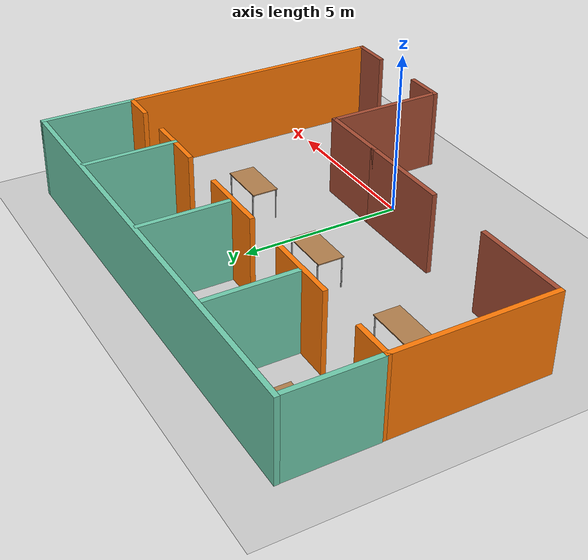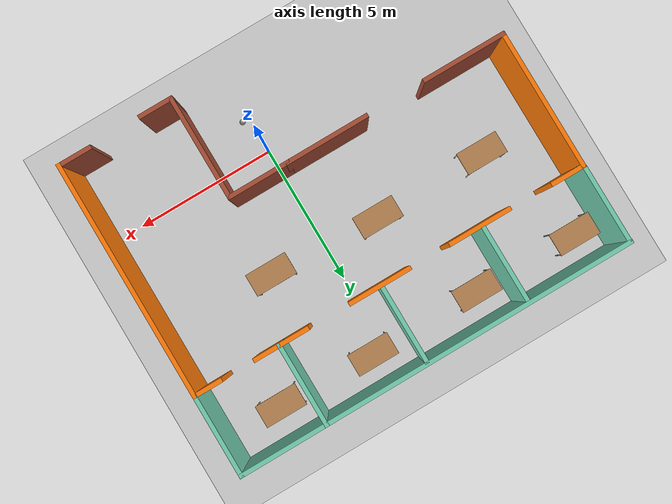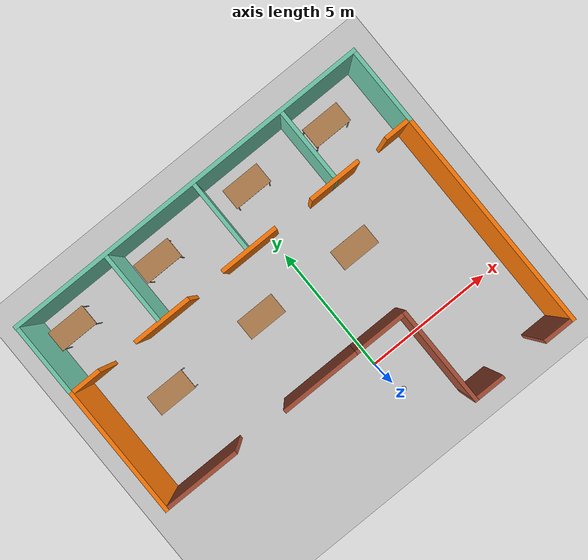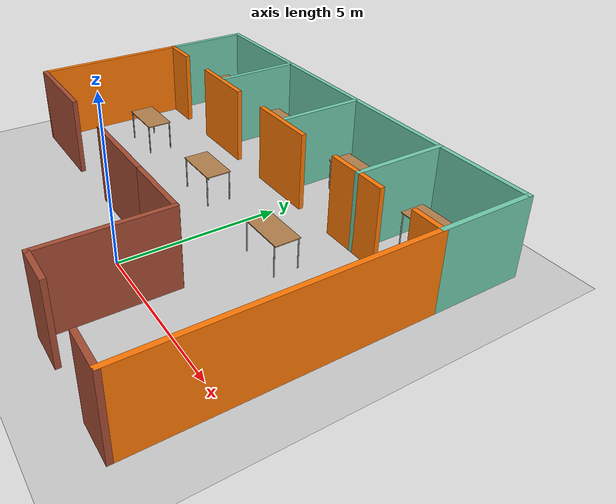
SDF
<sdf version="1.7">
 <world name="default">
  <plugin name="welcome" filename="libwelcome.so"/>
  <light name="sun" type="directional">
   <pose>0 0 10 0 -0 0</pose>
   <diffuse>0.8 0.8 0.8 1</diffuse>
   <specular>0.2 0.2 0.2 1</specular>
   <attenuation>
    <range>1000</range>
    <constant>0.9</constant>
    <linear>0.01</linear>
    <quadratic>0.001</quadratic>
   </attenuation>
   <direction>-0.5 0.1 -0.9</direction>
   <spot><inner_angle>0</inner_angle><outer_angle>0</outer_angle><falloff>0</falloff></spot>
  </light>
  <model name="ground_plane">
   <static>1</static>
   <link name="link">
    <collision name="collision">
     <geometry><plane><normal>0 0 1</normal><size>100 100</size></plane></geometry>
     <surface>
      <contact><collide_bitmask>65535</collide_bitmask></contact>
      <friction><ode><mu>100</mu><mu2>50</mu2></ode></friction>
     </surface>
    </collision>
    <visual name="visual">
     <cast_shadows>0</cast_shadows>
     <geometry><plane><normal>0 0 1</normal><size>100 100</size></plane></geometry>
     <material>
      <script><uri>file://media/materials/scripts/gazebo.material</uri><name>Gazebo/Grey</name></script>
     </material>
    </visual>
   </link>
  </model>
  <gravity>0 0 -9.8</gravity>
  <magnetic_field>6e-06 2.3e-05 -4.2e-05</magnetic_field>
  <atmosphere type="adiabatic"/>
  <physics type="ode">
   <max_step_size>0.001</max_step_size>
   <real_time_factor>1</real_time_factor>
   <real_time_update_rate>1000</real_time_update_rate>
  </physics>
  <scene><ambient>0.4 0.4 0.4 1</ambient><background>0.7 0.7 0.7 1</background><shadows>1</shadows></scene>
  <spherical_coordinates>
   <surface_model>EARTH_WGS84</surface_model>
   <latitude_deg>0</latitude_deg>
   <longitude_deg>0</longitude_deg>
   <elevation>0</elevation>
   <heading_deg>0</heading_deg>
  </spherical_coordinates>
  <model name="mybuilding">
   <pose>-1.18 3.025 0 0 -0 0</pose>
   <link name="Wall_0">
    <collision name="Wall_0_Collision">
     <geometry><box><size>14.25 0.15 2.5</size></box></geometry>
     <pose>0 0 1.25 0 -0 0</pose>
    </collision>
    <visual name="Wall_0_Visual">
     <pose>0 0 1.25 0 -0 0</pose>
     <geometry><box><size>14.25 0.15 2.5</size></box></geometry>
     <material>
      <script><uri>file://media/materials/scripts/gazebo.material</uri><name>Gazebo/Grey</name></script>
      <ambient>0.435294 0.796078 0.67451 1</ambient>
     </material>
     <meta><layer>0</layer></meta>
    </visual>
    <pose>0 5.615 0 0 -0 0</pose>
   </link>
   <link name="Wall_10">
    <collision name="Wall_10_Collision">
     <geometry><box><size>2.75 0.15 2.5</size></box></geometry>
     <pose>0 0 1.25 0 -0 0</pose>
    </collision>
    <visual name="Wall_10_Visual">
     <pose>0 0 1.25 0 -0 0</pose>
     <geometry><box><size>2.75 0.15 2.5</size></box></geometry>
     <material>
      <script><uri>file://media/materials/scripts/gazebo.material</uri><name>Gazebo/Grey</name></script>
      <ambient>0.435294 0.796078 0.67451 1</ambient>
     </material>
     <meta><layer>0</layer></meta>
    </visual>
    <pose>-3.35 4.225 0 0 -0 -1.5708</pose>
   </link>
   <link name="Wall_12">
    <collision name="Wall_12_Collision">
     <geometry><box><size>2.75 0.15 2.5</size></box></geometry>
     <pose>0 0 1.25 0 -0 0</pose>
    </collision>
    <visual name="Wall_12_Visual">
     <pose>0 0 1.25 0 -0 0</pose>
     <geometry><box><size>2.75 0.15 2.5</size></box></geometry>
     <material>
      <script><uri>file://media/materials/scripts/gazebo.material</uri><name>Gazebo/Grey</name></script>
      <ambient>0.435294 0.796078 0.67451 1</ambient>
     </material>
     <meta><layer>0</layer></meta>
    </visual>
    <pose>-7.04 4.235 0 0 -0 -1.5708</pose>
   </link>
   <link name="Wall_14">
    <collision name="Wall_14_Collision">
     <geometry><box><size>3 0.15 2.5</size></box></geometry>
     <pose>0 0 1.25 0 -0 0</pose>
    </collision>
    <visual name="Wall_14_Visual">
     <pose>0 0 1.25 0 -0 0</pose>
     <geometry><box><size>3 0.15 2.5</size></box></geometry>
     <material>
      <script><uri>file://media/materials/scripts/gazebo.material</uri><name>Gazebo/Grey</name></script>
      <ambient>0.435294 0.796078 0.67451 1</ambient>
     </material>
     <meta><layer>0</layer></meta>
    </visual>
    <pose>7.05 4.19 0 0 -0 -1.5708</pose>
   </link>
   <link name="Wall_16">
    <collision name="Wall_16_Collision">
     <geometry><box><size>2.25 0.15 2.5</size></box></geometry>
     <pose>0 0 1.25 0 -0 0</pose>
    </collision>
    <visual name="Wall_16_Visual">
     <pose>0 0 1.25 0 -0 0</pose>
     <geometry><box><size>2.25 0.15 2.5</size></box></geometry>
     <material>
      <script><uri>file://media/materials/scripts/gazebo.material</uri><name>Gazebo/Grey</name></script>
      <ambient>0.996078 0.47451 0.0196078 1</ambient>
     </material>
     <meta><layer>0</layer></meta>
    </visual>
    <pose>0.36 2.785 0 0 -0 3.14159</pose>
   </link>
   <link name="Wall_18">
    <collision name="Wall_18_Collision">
     <geometry><box><size>2.25 0.15 2.5</size></box></geometry>
     <pose>0 0 1.25 0 -0 0</pose>
    </collision>
    <visual name="Wall_18_Visual">
     <pose>0 0 1.25 0 -0 0</pose>
     <geometry><box><size>2.25 0.15 2.5</size></box></geometry>
     <material>
      <script><uri>file://media/materials/scripts/gazebo.material</uri><name>Gazebo/Grey</name></script>
      <ambient>0.996078 0.47451 0.0196078 1</ambient>
     </material>
     <meta><layer>0</layer></meta>
    </visual>
    <pose>-3.27 2.795 0 0 -0 3.14159</pose>
   </link>
   <link name="Wall_2">
    <collision name="Wall_2_Collision">
     <geometry><box><size>1 0.15 2.5</size></box></geometry>
     <pose>0 0 1.25 0 -0 0</pose>
    </collision>
    <visual name="Wall_2_Visual">
     <pose>0 0 1.25 0 -0 0</pose>
     <geometry><box><size>1 0.15 2.5</size></box></geometry>
     <material>
      <script><uri>file://media/materials/scripts/gazebo.material</uri><name>Gazebo/Grey</name></script>
      <ambient>0.996078 0.47451 0.0196078 1</ambient>
     </material>
     <meta><layer>0</layer></meta>
    </visual>
    <pose>6.555 2.765 0 0 -0 3.14159</pose>
   </link>
   <link name="Wall_22">
    <collision name="Wall_22_Collision">
     <geometry><box><size>5 0.15 2.5</size></box></geometry>
     <pose>0 0 1.25 0 -0 0</pose>
    </collision>
    <visual name="Wall_22_Visual">
     <pose>0 0 1.25 0 -0 0</pose>
     <geometry><box><size>5 0.15 2.5</size></box></geometry>
     <material>
      <script><uri>file://media/materials/scripts/gazebo.material</uri><name>Gazebo/Grey</name></script>
      <ambient>0.996078 0.47451 0.0196078 1</ambient>
     </material>
     <meta><layer>0</layer></meta>
    </visual>
    <pose>-7.03 0.4 0 0 -0 -1.5708</pose>
   </link>
   <link name="Wall_25">
    <collision name="Wall_25_Collision">
     <geometry><box><size>1.25 0.15 2.5</size></box></geometry>
     <pose>0 0 1.25 0 -0 0</pose>
    </collision>
    <visual name="Wall_25_Visual">
     <pose>0 0 1.25 0 -0 0</pose>
     <geometry><box><size>1.25 0.15 2.5</size></box></geometry>
     <material>
      <script><uri>file://media/materials/scripts/gazebo.material</uri><name>Gazebo/Grey</name></script>
      <ambient>0.996078 0.47451 0.0196078 1</ambient>
     </material>
     <meta><layer>0</layer></meta>
    </visual>
    <pose>-6.48 2.825 0 0 -0 0</pose>
   </link>
   <link name="Wall_27">
    <collision name="Wall_27_Collision">
     <geometry><box><size>3 0.15 2.5</size></box></geometry>
     <pose>0 0 1.25 0 -0 0</pose>
    </collision>
    <visual name="Wall_27_Visual">
     <pose>0 0 1.25 0 -0 0</pose>
     <geometry><box><size>3 0.15 2.5</size></box></geometry>
     <material>
      <script><uri>file://media/materials/scripts/gazebo.material</uri><name>Gazebo/Bricks</name></script>
      <ambient>1 1 1 1</ambient>
     </material>
     <meta><layer>0</layer></meta>
    </visual>
    <pose>-5.605 -2.025 0 0 -0 0</pose>
   </link>
   <link name="Wall_29">
    <collision name="Wall_29_Collision">
     <geometry><box><size>3 0.15 2.5</size></box></geometry>
     <pose>0 0 1.25 0 -0 0</pose>
    </collision>
    <visual name="Wall_29_Visual">
     <pose>0 0 1.25 0 -0 0</pose>
     <geometry><box><size>3 0.15 2.5</size></box></geometry>
     <material>
      <script><uri>file://media/materials/scripts/gazebo.material</uri><name>Gazebo/Bricks</name></script>
      <ambient>1 1 1 1</ambient>
     </material>
     <meta><layer>0</layer></meta>
    </visual>
    <pose>-0.565 -2.005 0 0 -0 0</pose>
   </link>
   <link name="Wall_31">
    <collision name="Wall_31_Collision">
     <geometry><box><size>8.5 0.15 2.5</size></box></geometry>
     <pose>0 0 1.25 0 -0 0</pose>
    </collision>
    <visual name="Wall_31_Visual">
     <pose>0 0 1.25 0 -0 0</pose>
     <geometry><box><size>8.5 0.15 2.5</size></box></geometry>
     <material>
      <script><uri>file://media/materials/scripts/gazebo.material</uri><name>Gazebo/Grey</name></script>
      <ambient>0.996078 0.47451 0.0196078 1</ambient>
     </material>
     <meta><layer>0</layer></meta>
    </visual>
    <pose>7.05 -1.41 0 0 -0 -1.5708</pose>
   </link>
   <link name="Wall_33">
    <collision name="Wall_33_Collision">
     <geometry><box><size>1.25 0.15 2.5</size></box></geometry>
     <pose>0 0 1.25 0 -0 0</pose>
    </collision>
    <visual name="Wall_33_Visual">
     <pose>0 0 1.25 0 -0 0</pose>
     <geometry><box><size>1.25 0.15 2.5</size></box></geometry>
     <material>
      <script><uri>file://media/materials/scripts/gazebo.material</uri><name>Gazebo/Bricks</name></script>
      <ambient>1 1 1 1</ambient>
     </material>
     <meta><layer>0</layer></meta>
    </visual>
    <pose>6.5 -5.585 0 0 -0 3.14159</pose>
   </link>
   <link name="Wall_37">
    <collision name="Wall_37_Collision">
     <geometry><box><size>3.75 0.15 2.5</size></box></geometry>
     <pose>0 0 1.25 0 -0 0</pose>
    </collision>
    <visual name="Wall_37_Visual">
     <pose>0 0 1.25 0 -0 0</pose>
     <geometry><box><size>3.75 0.15 2.5</size></box></geometry>
     <material>
      <script><uri>file://media/materials/scripts/gazebo.material</uri><name>Gazebo/Bricks</name></script>
      <ambient>1 1 1 1</ambient>
     </material>
     <meta><layer>0</layer></meta>
    </visual>
    <pose>2.97 -3.815 0 0 -0 1.5708</pose>
   </link>
   <link name="Wall_39">
    <collision name="Wall_39_Collision">
     <geometry><box><size>2.25 0.15 2.5</size></box></geometry>
     <pose>0 0 1.25 0 -0 0</pose>
    </collision>
    <visual name="Wall_39_Visual">
     <pose>0 0 1.25 0 -0 0</pose>
     <geometry><box><size>2.25 0.15 2.5</size></box></geometry>
     <material>
      <script><uri>file://media/materials/scripts/gazebo.material</uri><name>Gazebo/Bricks</name></script>
      <ambient>1 1 1 1</ambient>
     </material>
     <meta><layer>0</layer></meta>
    </visual>
    <pose>1.91 -2.005 0 0 -0 0</pose>
   </link>
   <link name="Wall_4">
    <collision name="Wall_4_Collision">
     <geometry><box><size>2 0.15 2.5</size></box></geometry>
     <pose>0 0 1.25 0 -0 0</pose>
    </collision>
    <visual name="Wall_4_Visual">
     <pose>0 0 1.25 0 -0 0</pose>
     <geometry><box><size>2 0.15 2.5</size></box></geometry>
     <material>
      <script><uri>file://media/materials/scripts/gazebo.material</uri><name>Gazebo/Grey</name></script>
      <ambient>0.996078 0.47451 0.0196078 1</ambient>
     </material>
     <meta><layer>0</layer></meta>
    </visual>
    <pose>3.925 2.765 0 0 -0 3.14159</pose>
   </link>
   <link name="Wall_41">
    <collision name="Wall_41_Collision">
     <geometry><box><size>1.25 0.15 2.5</size></box></geometry>
     <pose>0 0 1.25 0 -0 0</pose>
    </collision>
    <visual name="Wall_41_Visual">
     <pose>0 0 1.25 0 -0 0</pose>
     <geometry><box><size>1.25 0.15 2.5</size></box></geometry>
     <material>
      <script><uri>file://media/materials/scripts/gazebo.material</uri><name>Gazebo/Bricks</name></script>
      <ambient>1 1 1 1</ambient>
     </material>
     <meta><layer>0</layer></meta>
    </visual>
    <pose>3.52 -5.615 0 0 -0 0</pose>
   </link>
   <link name="Wall_6">
    <collision name="Wall_6_Collision">
     <geometry><box><size>3 0.15 2.5</size></box></geometry>
     <pose>0 0 1.25 0 -0 0</pose>
    </collision>
    <visual name="Wall_6_Visual">
     <pose>0 0 1.25 0 -0 0</pose>
     <geometry><box><size>3 0.15 2.5</size></box></geometry>
     <material>
      <script><uri>file://media/materials/scripts/gazebo.material</uri><name>Gazebo/Grey</name></script>
      <ambient>0.435294 0.796078 0.67451 1</ambient>
     </material>
     <meta><layer>0</layer></meta>
    </visual>
    <pose>3.99 4.19 0 0 -0 1.5708</pose>
   </link>
   <link name="Wall_8">
    <collision name="Wall_8_Collision">
     <geometry><box><size>2.75 0.15 2.5</size></box></geometry>
     <pose>0 0 1.25 0 -0 0</pose>
    </collision>
    <visual name="Wall_8_Visual">
     <pose>0 0 1.25 0 -0 0</pose>
     <geometry><box><size>2.75 0.15 2.5</size></box></geometry>
     <material>
      <script><uri>file://media/materials/scripts/gazebo.material</uri><name>Gazebo/Grey</name></script>
      <ambient>0.435294 0.796078 0.67451 1</ambient>
     </material>
     <meta><layer>0</layer></meta>
    </visual>
    <pose>0.32 4.225 0 0 -0 -1.5708</pose>
   </link>
   <static>1</static>
  </model>
  <model name="table">
   <static>1</static>
   <link name="link">
    <collision name="surface">
     <pose>0 0 1 0 -0 0</pose>
     <geometry><box><size>1.5 0.8 0.03</size></box></geometry>
     <surface><friction><ode><mu>0.6</mu><mu2>0.6</mu2></ode></friction></surface>
    </collision>
    <visual name="visual1">
     <pose>0 0 1 0 -0 0</pose>
     <geometry><box><size>1.5 0.8 0.03</size></box></geometry>
     <material>
      <script><uri>file://media/materials/scripts/gazebo.material</uri><name>Gazebo/Wood</name></script>
     </material>
    </visual>
    <collision name="front_left_leg">
     <pose>0.68 0.38 0.5 0 -0 0</pose>
     <geometry><cylinder><radius>0.02</radius><length>1</length></cylinder></geometry>
    </collision>
    <visual name="front_left_leg">
     <pose>0.68 0.38 0.5 0 -0 0</pose>
     <geometry><cylinder><radius>0.02</radius><length>1</length></cylinder></geometry>
     <material>
      <script><uri>file://media/materials/scripts/gazebo.material</uri><name>Gazebo/Grey</name></script>
     </material>
    </visual>
    <collision name="front_right_leg">
     <pose>0.68 -0.38 0.5 0 -0 0</pose>
     <geometry><cylinder><radius>0.02</radius><length>1</length></cylinder></geometry>
    </collision>
    <visual name="front_right_leg">
     <pose>0.68 -0.38 0.5 0 -0 0</pose>
     <geometry><cylinder><radius>0.02</radius><length>1</length></cylinder></geometry>
     <material>
      <script><uri>file://media/materials/scripts/gazebo.material</uri><name>Gazebo/Grey</name></script>
     </material>
    </visual>
    <collision name="back_right_leg">
     <pose>-0.68 -0.38 0.5 0 -0 0</pose>
     <geometry><cylinder><radius>0.02</radius><length>1</length></cylinder></geometry>
    </collision>
    <visual name="back_right_leg">
     <pose>-0.68 -0.38 0.5 0 -0 0</pose>
     <geometry><cylinder><radius>0.02</radius><length>1</length></cylinder></geometry>
     <material>
      <script><uri>file://media/materials/scripts/gazebo.material</uri><name>Gazebo/Grey</name></script>
     </material>
    </visual>
    <collision name="back_left_leg">
     <pose>-0.68 0.38 0.5 0 -0 0</pose>
     <geometry><cylinder><radius>0.02</radius><length>1</length></cylinder></geometry>
    </collision>
    <visual name="back_left_leg">
     <pose>-0.68 0.38 0.5 0 -0 0</pose>
     <geometry><cylinder><radius>0.02</radius><length>1</length></cylinder></geometry>
     <material>
      <script><uri>file://media/materials/scripts/gazebo.material</uri><name>Gazebo/Grey</name></script>
     </material>
    </visual>
   </link>
   <pose>-7.23219 7.65294 0 0 -0 0</pose>
  </model>
  <model name="table_clone">
   <static>1</static>
   <link name="link">
    <collision name="surface">
     <pose>0 0 1 0 -0 0</pose>
     <geometry><box><size>1.5 0.8 0.03</size></box></geometry>
     <surface><friction><ode><mu>0.6</mu><mu2>0.6</mu2></ode></friction></surface>
    </collision>
    <visual name="visual1">
     <pose>0 0 1 0 -0 0</pose>
     <geometry><box><size>1.5 0.8 0.03</size></box></geometry>
     <material>
      <script><uri>file://media/materials/scripts/gazebo.material</uri><name>Gazebo/Wood</name></script>
     </material>
    </visual>
    <collision name="front_left_leg">
     <pose>0.68 0.38 0.5 0 -0 0</pose>
     <geometry><cylinder><radius>0.02</radius><length>1</length></cylinder></geometry>
    </collision>
    <visual name="front_left_leg">
     <pose>0.68 0.38 0.5 0 -0 0</pose>
     <geometry><cylinder><radius>0.02</radius><length>1</length></cylinder></geometry>
     <material>
      <script><uri>file://media/materials/scripts/gazebo.material</uri><name>Gazebo/Grey</name></script>
     </material>
    </visual>
    <collision name="front_right_leg">
     <pose>0.68 -0.38 0.5 0 -0 0</pose>
     <geometry><cylinder><radius>0.02</radius><length>1</length></cylinder></geometry>
    </collision>
    <visual name="front_right_leg">
     <pose>0.68 -0.38 0.5 0 -0 0</pose>
     <geometry><cylinder><radius>0.02</radius><length>1</length></cylinder></geometry>
     <material>
      <script><uri>file://media/materials/scripts/gazebo.material</uri><name>Gazebo/Grey</name></script>
     </material>
    </visual>
    <collision name="back_right_leg">
     <pose>-0.68 -0.38 0.5 0 -0 0</pose>
     <geometry><cylinder><radius>0.02</radius><length>1</length></cylinder></geometry>
    </collision>
    <visual name="back_right_leg">
     <pose>-0.68 -0.38 0.5 0 -0 0</pose>
     <geometry><cylinder><radius>0.02</radius><length>1</length></cylinder></geometry>
     <material>
      <script><uri>file://media/materials/scripts/gazebo.material</uri><name>Gazebo/Grey</name></script>
     </material>
    </visual>
    <collision name="back_left_leg">
     <pose>-0.68 0.38 0.5 0 -0 0</pose>
     <geometry><cylinder><radius>0.02</radius><length>1</length></cylinder></geometry>
    </collision>
    <visual name="back_left_leg">
     <pose>-0.68 0.38 0.5 0 -0 0</pose>
     <geometry><cylinder><radius>0.02</radius><length>1</length></cylinder></geometry>
     <material>
      <script><uri>file://media/materials/scripts/gazebo.material</uri><name>Gazebo/Grey</name></script>
     </material>
    </visual>
   </link>
   <pose>-3.51452 7.59439 0 0 -0 0</pose>
  </model>
  <model name="table_0">
   <static>1</static>
   <link name="link">
    <collision name="surface">
     <pose>0 0 1 0 -0 0</pose>
     <geometry><box><size>1.5 0.8 0.03</size></box></geometry>
     <surface><friction><ode><mu>0.6</mu><mu2>0.6</mu2></ode></friction></surface>
    </collision>
    <visual name="visual1">
     <pose>0 0 1 0 -0 0</pose>
     <geometry><box><size>1.5 0.8 0.03</size></box></geometry>
     <material>
      <script><uri>file://media/materials/scripts/gazebo.material</uri><name>Gazebo/Wood</name></script>
     </material>
    </visual>
    <collision name="front_left_leg">
     <pose>0.68 0.38 0.5 0 -0 0</pose>
     <geometry><cylinder><radius>0.02</radius><length>1</length></cylinder></geometry>
    </collision>
    <visual name="front_left_leg">
     <pose>0.68 0.38 0.5 0 -0 0</pose>
     <geometry><cylinder><radius>0.02</radius><length>1</length></cylinder></geometry>
     <material>
      <script><uri>file://media/materials/scripts/gazebo.material</uri><name>Gazebo/Grey</name></script>
     </material>
    </visual>
    <collision name="front_right_leg">
     <pose>0.68 -0.38 0.5 0 -0 0</pose>
     <geometry><cylinder><radius>0.02</radius><length>1</length></cylinder></geometry>
    </collision>
    <visual name="front_right_leg">
     <pose>0.68 -0.38 0.5 0 -0 0</pose>
     <geometry><cylinder><radius>0.02</radius><length>1</length></cylinder></geometry>
     <material>
      <script><uri>file://media/materials/scripts/gazebo.material</uri><name>Gazebo/Grey</name></script>
     </material>
    </visual>
    <collision name="back_right_leg">
     <pose>-0.68 -0.38 0.5 0 -0 0</pose>
     <geometry><cylinder><radius>0.02</radius><length>1</length></cylinder></geometry>
    </collision>
    <visual name="back_right_leg">
     <pose>-0.68 -0.38 0.5 0 -0 0</pose>
     <geometry><cylinder><radius>0.02</radius><length>1</length></cylinder></geometry>
     <material>
      <script><uri>file://media/materials/scripts/gazebo.material</uri><name>Gazebo/Grey</name></script>
     </material>
    </visual>
    <collision name="back_left_leg">
     <pose>-0.68 0.38 0.5 0 -0 0</pose>
     <geometry><cylinder><radius>0.02</radius><length>1</length></cylinder></geometry>
    </collision>
    <visual name="back_left_leg">
     <pose>-0.68 0.38 0.5 0 -0 0</pose>
     <geometry><cylinder><radius>0.02</radius><length>1</length></cylinder></geometry>
     <material>
      <script><uri>file://media/materials/scripts/gazebo.material</uri><name>Gazebo/Grey</name></script>
     </material>
    </visual>
   </link>
   <pose>0.469347 7.63652 0 0 -0 0</pose>
  </model>
  <model name="table_1">
   <static>1</static>
   <link name="link">
    <collision name="surface">
     <pose>0 0 1 0 -0 0</pose>
     <geometry><box><size>1.5 0.8 0.03</size></box></geometry>
     <surface><friction><ode><mu>0.6</mu><mu2>0.6</mu2></ode></friction></surface>
    </collision>
    <visual name="visual1">
     <pose>0 0 1 0 -0 0</pose>
     <geometry><box><size>1.5 0.8 0.03</size></box></geometry>
     <material>
      <script><uri>file://media/materials/scripts/gazebo.material</uri><name>Gazebo/Wood</name></script>
     </material>
    </visual>
    <collision name="front_left_leg">
     <pose>0.68 0.38 0.5 0 -0 0</pose>
     <geometry><cylinder><radius>0.02</radius><length>1</length></cylinder></geometry>
    </collision>
    <visual name="front_left_leg">
     <pose>0.68 0.38 0.5 0 -0 0</pose>
     <geometry><cylinder><radius>0.02</radius><length>1</length></cylinder></geometry>
     <material>
      <script><uri>file://media/materials/scripts/gazebo.material</uri><name>Gazebo/Grey</name></script>
     </material>
    </visual>
    <collision name="front_right_leg">
     <pose>0.68 -0.38 0.5 0 -0 0</pose>
     <geometry><cylinder><radius>0.02</radius><length>1</length></cylinder></geometry>
    </collision>
    <visual name="front_right_leg">
     <pose>0.68 -0.38 0.5 0 -0 0</pose>
     <geometry><cylinder><radius>0.02</radius><length>1</length></cylinder></geometry>
     <material>
      <script><uri>file://media/materials/scripts/gazebo.material</uri><name>Gazebo/Grey</name></script>
     </material>
    </visual>
    <collision name="back_right_leg">
     <pose>-0.68 -0.38 0.5 0 -0 0</pose>
     <geometry><cylinder><radius>0.02</radius><length>1</length></cylinder></geometry>
    </collision>
    <visual name="back_right_leg">
     <pose>-0.68 -0.38 0.5 0 -0 0</pose>
     <geometry><cylinder><radius>0.02</radius><length>1</length></cylinder></geometry>
     <material>
      <script><uri>file://media/materials/scripts/gazebo.material</uri><name>Gazebo/Grey</name></script>
     </material>
    </visual>
    <collision name="back_left_leg">
     <pose>-0.68 0.38 0.5 0 -0 0</pose>
     <geometry><cylinder><radius>0.02</radius><length>1</length></cylinder></geometry>
    </collision>
    <visual name="back_left_leg">
     <pose>-0.68 0.38 0.5 0 -0 0</pose>
     <geometry><cylinder><radius>0.02</radius><length>1</length></cylinder></geometry>
     <material>
      <script><uri>file://media/materials/scripts/gazebo.material</uri><name>Gazebo/Grey</name></script>
     </material>
    </visual>
   </link>
   <pose>3.9044 7.52572 0 0 -0 0</pose>
  </model>
  <model name="table_2">
   <static>1</static>
   <link name="link">
    <collision name="surface">
     <pose>0 0 1 0 -0 0</pose>
     <geometry><box><size>1.5 0.8 0.03</size></box></geometry>
     <surface><friction><ode><mu>0.6</mu><mu2>0.6</mu2></ode></friction></surface>
    </collision>
    <visual name="visual1">
     <pose>0 0 1 0 -0 0</pose>
     <geometry><box><size>1.5 0.8 0.03</size></box></geometry>
     <material>
      <script><uri>file://media/materials/scripts/gazebo.material</uri><name>Gazebo/Wood</name></script>
     </material>
    </visual>
    <collision name="front_left_leg">
     <pose>0.68 0.38 0.5 0 -0 0</pose>
     <geometry><cylinder><radius>0.02</radius><length>1</length></cylinder></geometry>
    </collision>
    <visual name="front_left_leg">
     <pose>0.68 0.38 0.5 0 -0 0</pose>
     <geometry><cylinder><radius>0.02</radius><length>1</length></cylinder></geometry>
     <material>
      <script><uri>file://media/materials/scripts/gazebo.material</uri><name>Gazebo/Grey</name></script>
     </material>
    </visual>
    <collision name="front_right_leg">
     <pose>0.68 -0.38 0.5 0 -0 0</pose>
     <geometry><cylinder><radius>0.02</radius><length>1</length></cylinder></geometry>
    </collision>
    <visual name="front_right_leg">
     <pose>0.68 -0.38 0.5 0 -0 0</pose>
     <geometry><cylinder><radius>0.02</radius><length>1</length></cylinder></geometry>
     <material>
      <script><uri>file://media/materials/scripts/gazebo.material</uri><name>Gazebo/Grey</name></script>
     </material>
    </visual>
    <collision name="back_right_leg">
     <pose>-0.68 -0.38 0.5 0 -0 0</pose>
     <geometry><cylinder><radius>0.02</radius><length>1</length></cylinder></geometry>
    </collision>
    <visual name="back_right_leg">
     <pose>-0.68 -0.38 0.5 0 -0 0</pose>
     <geometry><cylinder><radius>0.02</radius><length>1</length></cylinder></geometry>
     <material>
      <script><uri>file://media/materials/scripts/gazebo.material</uri><name>Gazebo/Grey</name></script>
     </material>
    </visual>
    <collision name="back_left_leg">
     <pose>-0.68 0.38 0.5 0 -0 0</pose>
     <geometry><cylinder><radius>0.02</radius><length>1</length></cylinder></geometry>
    </collision>
    <visual name="back_left_leg">
     <pose>-0.68 0.38 0.5 0 -0 0</pose>
     <geometry><cylinder><radius>0.02</radius><length>1</length></cylinder></geometry>
     <material>
      <script><uri>file://media/materials/scripts/gazebo.material</uri><name>Gazebo/Grey</name></script>
     </material>
    </visual>
   </link>
   <pose>-6.00039 3.80451 0 0 -0 0</pose>
  </model>
  <model name="table_3">
   <static>1</static>
   <link name="link">
    <collision name="surface">
     <pose>0 0 1 0 -0 0</pose>
     <geometry><box><size>1.5 0.8 0.03</size></box></geometry>
     <surface><friction><ode><mu>0.6</mu><mu2>0.6</mu2></ode></friction></surface>
    </collision>
    <visual name="visual1">
     <pose>0 0 1 0 -0 0</pose>
     <geometry><box><size>1.5 0.8 0.03</size></box></geometry>
     <material>
      <script><uri>file://media/materials/scripts/gazebo.material</uri><name>Gazebo/Wood</name></script>
     </material>
    </visual>
    <collision name="front_left_leg">
     <pose>0.68 0.38 0.5 0 -0 0</pose>
     <geometry><cylinder><radius>0.02</radius><length>1</length></cylinder></geometry>
    </collision>
    <visual name="front_left_leg">
     <pose>0.68 0.38 0.5 0 -0 0</pose>
     <geometry><cylinder><radius>0.02</radius><length>1</length></cylinder></geometry>
     <material>
      <script><uri>file://media/materials/scripts/gazebo.material</uri><name>Gazebo/Grey</name></script>
     </material>
    </visual>
    <collision name="front_right_leg">
     <pose>0.68 -0.38 0.5 0 -0 0</pose>
     <geometry><cylinder><radius>0.02</radius><length>1</length></cylinder></geometry>
    </collision>
    <visual name="front_right_leg">
     <pose>0.68 -0.38 0.5 0 -0 0</pose>
     <geometry><cylinder><radius>0.02</radius><length>1</length></cylinder></geometry>
     <material>
      <script><uri>file://media/materials/scripts/gazebo.material</uri><name>Gazebo/Grey</name></script>
     </material>
    </visual>
    <collision name="back_right_leg">
     <pose>-0.68 -0.38 0.5 0 -0 0</pose>
     <geometry><cylinder><radius>0.02</radius><length>1</length></cylinder></geometry>
    </collision>
    <visual name="back_right_leg">
     <pose>-0.68 -0.38 0.5 0 -0 0</pose>
     <geometry><cylinder><radius>0.02</radius><length>1</length></cylinder></geometry>
     <material>
      <script><uri>file://media/materials/scripts/gazebo.material</uri><name>Gazebo/Grey</name></script>
     </material>
    </visual>
    <collision name="back_left_leg">
     <pose>-0.68 0.38 0.5 0 -0 0</pose>
     <geometry><cylinder><radius>0.02</radius><length>1</length></cylinder></geometry>
    </collision>
    <visual name="back_left_leg">
     <pose>-0.68 0.38 0.5 0 -0 0</pose>
     <geometry><cylinder><radius>0.02</radius><length>1</length></cylinder></geometry>
     <material>
      <script><uri>file://media/materials/scripts/gazebo.material</uri><name>Gazebo/Grey</name></script>
     </material>
    </visual>
   </link>
   <pose>-1.97182 3.86457 0 0 -0 0</pose>
  </model>
  <model name="table_4">
   <static>1</static>
   <link name="link">
    <collision name="surface">
     <pose>0 0 1 0 -0 0</pose>
     <geometry><box><size>1.5 0.8 0.03</size></box></geometry>
     <surface><friction><ode><mu>0.6</mu><mu2>0.6</mu2></ode></friction></surface>
    </collision>
    <visual name="visual1">
     <pose>0 0 1 0 -0 0</pose>
     <geometry><box><size>1.5 0.8 0.03</size></box></geometry>
     <material>
      <script><uri>file://media/materials/scripts/gazebo.material</uri><name>Gazebo/Wood</name></script>
     </material>
    </visual>
    <collision name="front_left_leg">
     <pose>0.68 0.38 0.5 0 -0 0</pose>
     <geometry><cylinder><radius>0.02</radius><length>1</length></cylinder></geometry>
    </collision>
    <visual name="front_left_leg">
     <pose>0.68 0.38 0.5 0 -0 0</pose>
     <geometry><cylinder><radius>0.02</radius><length>1</length></cylinder></geometry>
     <material>
      <script><uri>file://media/materials/scripts/gazebo.material</uri><name>Gazebo/Grey</name></script>
     </material>
    </visual>
    <collision name="front_right_leg">
     <pose>0.68 -0.38 0.5 0 -0 0</pose>
     <geometry><cylinder><radius>0.02</radius><length>1</length></cylinder></geometry>
    </collision>
    <visual name="front_right_leg">
     <pose>0.68 -0.38 0.5 0 -0 0</pose>
     <geometry><cylinder><radius>0.02</radius><length>1</length></cylinder></geometry>
     <material>
      <script><uri>file://media/materials/scripts/gazebo.material</uri><name>Gazebo/Grey</name></script>
     </material>
    </visual>
    <collision name="back_right_leg">
     <pose>-0.68 -0.38 0.5 0 -0 0</pose>
     <geometry><cylinder><radius>0.02</radius><length>1</length></cylinder></geometry>
    </collision>
    <visual name="back_right_leg">
     <pose>-0.68 -0.38 0.5 0 -0 0</pose>
     <geometry><cylinder><radius>0.02</radius><length>1</length></cylinder></geometry>
     <material>
      <script><uri>file://media/materials/scripts/gazebo.material</uri><name>Gazebo/Grey</name></script>
     </material>
    </visual>
    <collision name="back_left_leg">
     <pose>-0.68 0.38 0.5 0 -0 0</pose>
     <geometry><cylinder><radius>0.02</radius><length>1</length></cylinder></geometry>
    </collision>
    <visual name="back_left_leg">
     <pose>-0.68 0.38 0.5 0 -0 0</pose>
     <geometry><cylinder><radius>0.02</radius><length>1</length></cylinder></geometry>
     <material>
      <script><uri>file://media/materials/scripts/gazebo.material</uri><name>Gazebo/Grey</name></script>
     </material>
    </visual>
   </link>
   <pose>1.9962 3.68008 0 0 -0 0</pose>
  </model>
  <model name="my_ball">
   <link name="link_0">
    <inertial>
     <mass>1</mass>
     <inertia><ixx>0.1</ixx><ixy>0</ixy><ixz>0</ixz><iyy>0.1</iyy><iyz>0</iyz><izz>0.1</izz></inertia>
    </inertial>
    <visual name="visual">
     <geometry><sphere><radius>0.1</radius></sphere></geometry>
     <material>
      <lighting>1</lighting>
      <script><uri>file://media/materials/scripts/gazebo.material</uri><name>Gazebo/Grey</name></script>
      <shader type="pixel"><normal_map>__default__</normal_map></shader>
      <ambient>1 1 1 1</ambient>
      <diffuse>1 1 1 1</diffuse>
      <specular>1 1 1 1</specular>
      <emissive>1 1 1 1</emissive>
     </material>
    </visual>
    <collision name="collision">
     <geometry><sphere><radius>0.1</radius></sphere></geometry>
     <surface>
      <friction>
       <ode><mu>1</mu><mu2>1</mu2><fdir1>0 0 0</fdir1><slip1>0</slip1><slip2>0</slip2></ode>
       <torsional>
        <coefficient>1</coefficient>
        <patch_radius>0</patch_radius>
        <surface_radius>0</surface_radius>
        <use_patch_radius>1</use_patch_radius>
        <ode><slip>0</slip></ode>
       </torsional>
      </friction>
      <bounce><restitution_coefficient>0</restitution_coefficient><threshold>1e+06</threshold></bounce>
      <contact>
       <collide_without_contact>0</collide_without_contact>
       <collide_without_contact_bitmask>1</collide_without_contact_bitmask>
       <collide_bitmask>1</collide_bitmask>
       <ode>
        <soft_cfm>0</soft_cfm>
        <soft_erp>0.2</soft_erp>
        <kp>1e+13</kp>
        <kd>1</kd>
        <max_vel>0.01</max_vel>
        <min_depth>0</min_depth>
       </ode>
       <bullet>
        <split_impulse>1</split_impulse>
        <split_impulse_penetration_threshold>-0.01</split_impulse_penetration_threshold>
        <soft_cfm>0</soft_cfm>
        <soft_erp>0.2</soft_erp>
        <kp>1e+13</kp>
        <kd>1</kd>
       </bullet>
      </contact>
     </surface>
    </collision>
   </link>
   <static>0</static>
   <pose>0.246983 -1.3136 0.1 0 -0 0</pose>
  </model>
 </world>
</sdf>
